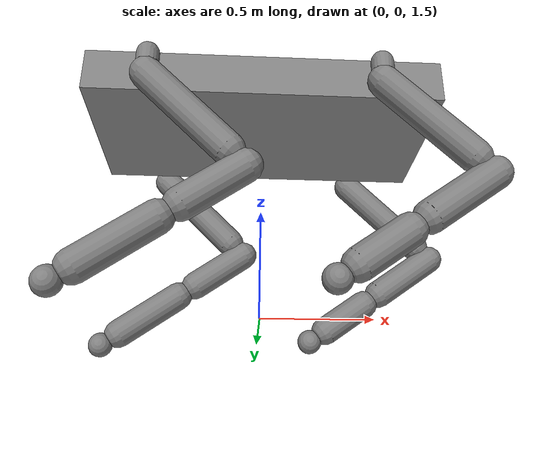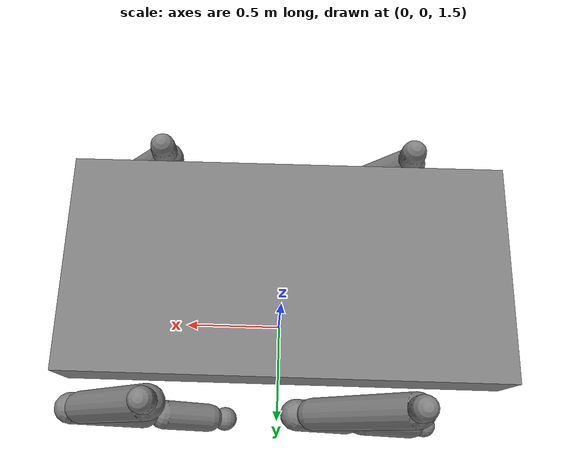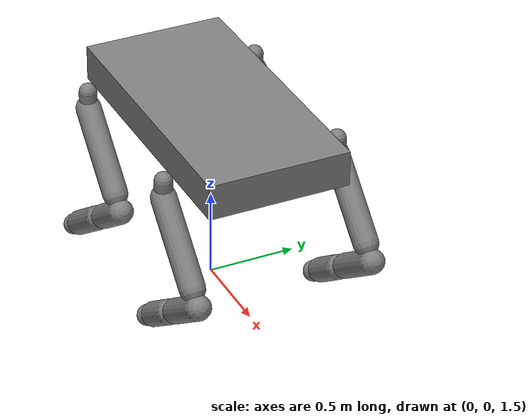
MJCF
<mujoco model="xmlrobot_10">
	<compiler inertiafromgeom="true" />
	<option gravity="0 0 -9.8" />
	<size nconmax="500" njmax="1000" />
	<custom />
	<default />
	<asset />
	<worldbody>
		<body name="root" pos="0 0 2.5" quat="0.707 0.0 0.0 -0.707">
			<geom density="5.0" friction="1.5 0.005 0.0001" name="geomroot" pos="-0.02 0 0.07" quat="1.0 0.0 0.0 0.0" size="0.15 0.15 0.02" type="box" />
			<body name="body1" pos="0 0 0" quat="1.0 0.0 0.0 0.0">
				<geom density="5.0" friction="1.5 0.005 0.0001" name="geombody1" pos="-0.02 0 0" quat="1.0 0.0 0.0 0.0" size="0.4 0.8 0.1" type="box" />
				<joint armature="0.005" axis="0 0 1" damping="1.0" limited="true" name="joint_joint1" pos="0 0 0" range="-5 5" stiffness="2.0" type="hinge" />
				<body name="limbmount4" pos="0.5 -0.5 0" quat="0.70711 0.0 0.70711 0.0">
					<geom density="500" friction="1.5 0.005 0.0001" fromto="0 0 0 0.05 0 0" name="geomlimbmount4" quat="1.0 0.0 0.0 0.0" size="0.05" type="capsule" />
					<joint armature="0.005" axis="0 1 0" damping="1.0" limited="true" name="joint_joint5" pos="0 0 0" range="-5 5" stiffness="2.0" type="hinge" />
					<body name="limbmount4_new_new" pos="0.1 0 0" quat="0.92388 0.0 0.0 0.38268">
						<geom density="500" friction="1.5 0.005 0.0001" fromto="0 0 0 0.5 0 0" name="geomlimbmount4_new_new" quat="1.0 0.0 0.0 0.0" size="0.07" type="capsule" />
						<joint armature="0.005" axis="0 0 1" damping="1.0" limited="true" name="joint_limbmount4_new" pos="0 0 0" range="-45 45" stiffness="2.0" type="hinge" />
						<body name="limbmount4_new_new_new_new" pos="0.6 0 0" quat="0.64279 0.0 0.0 -0.76604">
							<geom density="500" friction="1.5 0.005 0.0001" fromto="0 0 0 0.3 0 0" name="geomlimbmount4_new_new_new_new" quat="1.0 0.0 0.0 0.0" size="0.07" type="capsule" />
							<joint armature="0.005" axis="0 0 1" damping="1.0" limited="true" name="joint_limbmount4_new_new_new" pos="0 0 0" range="-45 45" stiffness="2.0" type="hinge" />
							<body name="limbmount4_new_new_new_new_new_new" pos="0.4 0 0" quat="1.0 0.0 0.0 0.0">
								<geom density="500" friction="1.5 0.005 0.0001" fromto="0 0 0 0.35 0 0" name="geomlimbmount4_new_new_new_new_new_new" quat="1.0 0.0 0.0 0.0" size="0.07" type="capsule" />
								<joint armature="0.005" axis="0 0 1" damping="1.0" limited="true" name="joint_limbmount4_new_new_new_new_new" pos="0 0 0" range="-45 45" stiffness="2.0" type="hinge" />
								<body name="limbmount4_new_new_new_new_new_new_new_new" pos="0.44999999999999996 0 0" quat="1.0 0.0 0.0 0.0">
									<geom density="500" friction="1.5 0.005 0.0001" name="geomlimbmount4_new_new_new_new_new_new_new_new" pos="0 0 0" quat="1.0 0.0 0.0 0.0" size="0.06" type="sphere" />
									<joint armature="0.005" axis="1 0 0" damping="1.0" limited="true" name="joint_limbmount4_new_new_new_new_new_new_new" pos="0 0 0" range="-5 5" stiffness="2.0" type="hinge" />
								</body>
							</body>
						</body>
					</body>
				</body>
				<body name="limbmount3" pos="-0.5 -0.5 0" quat="0.70711 0.0 0.70711 0.0">
					<geom density="500" friction="1.5 0.005 0.0001" fromto="0 0 0 0.05 0 0" name="geomlimbmount3" quat="1.0 0.0 0.0 0.0" size="0.05" type="capsule" />
					<joint armature="0.005" axis="0 1 0" damping="1.0" limited="true" name="joint_joint4" pos="0 0 0" range="-5 5" stiffness="2.0" type="hinge" />
					<body name="upper_link_f1" pos="0.1 0 0" quat="0.92388 0.0 0.0 0.38268">
						<geom density="500" friction="1.5 0.005 0.0001" fromto="0 0 0 0.5 0 0" name="geomupper_link_f1" quat="1.0 0.0 0.0 0.0" size="0.07" type="capsule" />
						<joint armature="0.005" axis="0 0 1" damping="1.0" limited="true" name="joint_joint6" pos="0 0 0" range="-45 45" stiffness="2.0" type="hinge" />
						<body name="lower_link_b1" pos="0.6 0 0" quat="0.64279 0.0 0.0 -0.76604">
							<geom density="500" friction="1.5 0.005 0.0001" fromto="0 0 0 0.3 0 0" name="geomlower_link_b1" quat="1.0 0.0 0.0 0.0" size="0.07" type="capsule" />
							<joint armature="0.005" axis="0 0 1" damping="1.0" limited="true" name="joint_joint8" pos="0 0 0" range="-45 45" stiffness="2.0" type="hinge" />
							<body name="lower_link4" pos="0.4 0 0" quat="1.0 0.0 0.0 0.0">
								<geom density="500" friction="1.5 0.005 0.0001" fromto="0 0 0 0.35 0 0" name="geomlower_link4" quat="1.0 0.0 0.0 0.0" size="0.07" type="capsule" />
								<joint armature="0.005" axis="0 0 1" damping="1.0" limited="true" name="joint_joint13" pos="0 0 0" range="-45 45" stiffness="2.0" type="hinge" />
								<body name="foot_link_end2" pos="0.44999999999999996 0 0" quat="1.0 0.0 0.0 0.0">
									<geom density="500" friction="1.5 0.005 0.0001" name="geomfoot_link_end2" pos="0 0 0" quat="1.0 0.0 0.0 0.0" size="0.06" type="sphere" />
									<joint armature="0.005" axis="1 0 0" damping="1.0" limited="true" name="joint_joint15" pos="0 0 0" range="-5 5" stiffness="2.0" type="hinge" />
								</body>
							</body>
						</body>
					</body>
				</body>
				<body name="limbmount2" pos="-0.5 0.5 0" quat="0.70711 0.0 0.70711 0.0">
					<geom density="500" friction="1.5 0.005 0.0001" fromto="0 0 0 0.05 0 0" name="geomlimbmount2" quat="1.0 0.0 0.0 0.0" size="0.05" type="capsule" />
					<joint armature="0.005" axis="0 1 0" damping="1.0" limited="true" name="joint_joint3" pos="0 0 0" range="-5 5" stiffness="2.0" type="hinge" />
					<body name="limbmount2_new_new" pos="0.1 0 0" quat="0.92388 0.0 0.0 0.38268">
						<geom density="500" friction="1.5 0.005 0.0001" fromto="0 0 0 0.5 0 0" name="geomlimbmount2_new_new" quat="1.0 0.0 0.0 0.0" size="0.07" type="capsule" />
						<joint armature="0.005" axis="0 0 1" damping="1.0" limited="true" name="joint_limbmount2_new" pos="0 0 0" range="-45 45" stiffness="2.0" type="hinge" />
						<body name="limbmount2_new_new_new_new" pos="0.6 0 0" quat="0.64279 0.0 0.0 -0.76604">
							<geom density="500" friction="1.5 0.005 0.0001" fromto="0 0 0 0.35 0 0" name="geomlimbmount2_new_new_new_new" quat="1.0 0.0 0.0 0.0" size="0.07" type="capsule" />
							<joint armature="0.005" axis="0 0 1" damping="1.0" limited="true" name="joint_limbmount2_new_new_new" pos="0 0 0" range="-45 45" stiffness="2.0" type="hinge" />
							<body name="limbmount2_new_new_new_new_new_new" pos="0.44999999999999996 0 0" quat="1.0 0.0 0.0 0.0">
								<geom density="500" friction="1.5 0.005 0.0001" fromto="0 0 0 0.25 0 0" name="geomlimbmount2_new_new_new_new_new_new" quat="1.0 0.0 0.0 0.0" size="0.07" type="capsule" />
								<joint armature="0.005" axis="0 0 1" damping="1.0" limited="true" name="joint_limbmount2_new_new_new_new_new" pos="0 0 0" range="-45 45" stiffness="2.0" type="hinge" />
								<body name="limbmount2_new_new_new_new_new_new_new_new" pos="0.35 0 0" quat="1.0 0.0 0.0 0.0">
									<geom density="500" friction="1.5 0.005 0.0001" name="geomlimbmount2_new_new_new_new_new_new_new_new" pos="0 0 0" quat="1.0 0.0 0.0 0.0" size="0.06" type="sphere" />
									<joint armature="0.005" axis="1 0 0" damping="1.0" limited="true" name="joint_limbmount2_new_new_new_new_new_new_new" pos="0 0 0" range="-5 5" stiffness="2.0" type="hinge" />
								</body>
							</body>
						</body>
					</body>
				</body>
				<body name="limbmount1" pos="0.5 0.5 0" quat="0.70711 0.0 0.70711 0.0">
					<geom density="500" friction="1.5 0.005 0.0001" fromto="0 0 0 0.05 0 0" name="geomlimbmount1" quat="1.0 0.0 0.0 0.0" size="0.05" type="capsule" />
					<joint armature="0.005" axis="0 1 0" damping="1.0" limited="true" name="joint_joint2" pos="0 0 0" range="-5 5" stiffness="2.0" type="hinge" />
					<body name="upper_link_f2" pos="0.1 0 0" quat="0.92388 0.0 0.0 0.38268">
						<geom density="500" friction="1.5 0.005 0.0001" fromto="0 0 0 0.5 0 0" name="geomupper_link_f2" quat="1.0 0.0 0.0 0.0" size="0.07" type="capsule" />
						<joint armature="0.005" axis="0 0 1" damping="1.0" limited="true" name="joint_joint9" pos="0 0 0" range="-45 45" stiffness="2.0" type="hinge" />
						<body name="lower_link_b2" pos="0.6 0 0" quat="0.64279 0.0 0.0 -0.76604">
							<geom density="500" friction="1.5 0.005 0.0001" fromto="0 0 0 0.35 0 0" name="geomlower_link_b2" quat="1.0 0.0 0.0 0.0" size="0.07" type="capsule" />
							<joint armature="0.005" axis="0 0 1" damping="1.0" limited="true" name="joint_joint10" pos="0 0 0" range="-45 45" stiffness="2.0" type="hinge" />
							<body name="lower_link3" pos="0.44999999999999996 0 0" quat="1.0 0.0 0.0 0.0">
								<geom density="500" friction="1.5 0.005 0.0001" fromto="0 0 0 0.25 0 0" name="geomlower_link3" quat="1.0 0.0 0.0 0.0" size="0.07" type="capsule" />
								<joint armature="0.005" axis="0 0 1" damping="1.0" limited="true" name="joint_joint11" pos="0 0 0" range="-45 45" stiffness="2.0" type="hinge" />
								<body name="foot_link_end1" pos="0.35 0 0" quat="1.0 0.0 0.0 0.0">
									<geom density="500" friction="1.5 0.005 0.0001" name="geomfoot_link_end1" pos="0 0 0" quat="1.0 0.0 0.0 0.0" size="0.06" type="sphere" />
									<joint armature="0.005" axis="1 0 0" damping="1.0" limited="true" name="joint_joint14" pos="0 0 0" range="-5 5" stiffness="2.0" type="hinge" />
								</body>
							</body>
						</body>
					</body>
				</body>
			</body>
		</body>
	</worldbody>
	<actuator>
		<motor ctrllimited="true" ctrlrange="-1 1" gear="22.5" joint="joint_joint1" />
		<motor ctrllimited="true" ctrlrange="-1 1" gear="45" joint="joint_joint5" />
		<motor ctrllimited="true" ctrlrange="-1 1" gear="45" joint="joint_limbmount4_new" />
		<motor ctrllimited="true" ctrlrange="-1 1" gear="45" joint="joint_limbmount4_new_new_new" />
		<motor ctrllimited="true" ctrlrange="-1 1" gear="45" joint="joint_limbmount4_new_new_new_new_new" />
		<motor ctrllimited="true" ctrlrange="-1 1" gear="45" joint="joint_limbmount4_new_new_new_new_new_new_new" />
		<motor ctrllimited="true" ctrlrange="-1 1" gear="45" joint="joint_joint4" />
		<motor ctrllimited="true" ctrlrange="-1 1" gear="45" joint="joint_joint6" />
		<motor ctrllimited="true" ctrlrange="-1 1" gear="45" joint="joint_joint8" />
		<motor ctrllimited="true" ctrlrange="-1 1" gear="45" joint="joint_joint13" />
		<motor ctrllimited="true" ctrlrange="-1 1" gear="45" joint="joint_joint15" />
		<motor ctrllimited="true" ctrlrange="-1 1" gear="45" joint="joint_joint3" />
		<motor ctrllimited="true" ctrlrange="-1 1" gear="45" joint="joint_limbmount2_new" />
		<motor ctrllimited="true" ctrlrange="-1 1" gear="45" joint="joint_limbmount2_new_new_new" />
		<motor ctrllimited="true" ctrlrange="-1 1" gear="45" joint="joint_limbmount2_new_new_new_new_new" />
		<motor ctrllimited="true" ctrlrange="-1 1" gear="45" joint="joint_limbmount2_new_new_new_new_new_new_new" />
		<motor ctrllimited="true" ctrlrange="-1 1" gear="45" joint="joint_joint2" />
		<motor ctrllimited="true" ctrlrange="-1 1" gear="45" joint="joint_joint9" />
		<motor ctrllimited="true" ctrlrange="-1 1" gear="45" joint="joint_joint10" />
		<motor ctrllimited="true" ctrlrange="-1 1" gear="45" joint="joint_joint11" />
		<motor ctrllimited="true" ctrlrange="-1 1" gear="45" joint="joint_joint14" />
	</actuator>
</mujoco>
